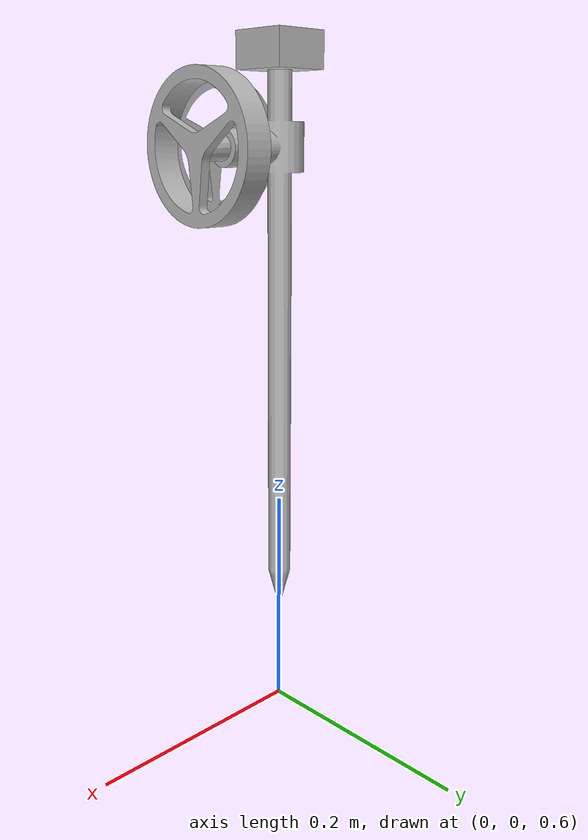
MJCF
<mujoco model="momentum_pendulum">
  <option timestep="0.005" wind="0.1 0.1 0">
    <flag energy="enable"/>
  </option>
    <size njmax="50" nconmax="10" nstack="200"/>
    <visual>
      <rgba haze=".3 .3 .3 1"/>
      <global offwidth="2560" offheight="1440" elevation="-20" azimuth="120"/>
    </visual>

  <asset>
    <mesh name="base_link" file="base_link.stl" scale="0.001 0.001 0.001"/>
    <mesh name="axis_1_1" file="axis_1_1.stl" scale="0.001 0.001 0.001"/>
    <mesh name="axis_2_1" file="axis_2_1.stl" scale="0.001 0.001 0.001"/>
    <texture type="skybox" builtin="gradient" rgb1="0.4 0.6 0.8" rgb2="0 0 0" width="32" height="512"/>
    <texture name="grid" type="2d" builtin="checker" rgb1="0.2 0.3 0.4" rgb2="0.1 0.2 0.3" width="512" height="512"/>
    <material name="grid" texture="grid" texrepeat="1 1" texuniform="true" reflectance="0.2"/>
  </asset>
  <worldbody>
    <geom name="floor" size="0 0 0.01" type="plane" material="grid" condim="1"/>
    <light name="floorlight" mode="fixed" pos="0 0 50" dir="0 0 -1" diffuse="0.8 0.8 0.8" specular="0.3 0.3 0.3"/>
    <body name="rod" pos="0 0 0.7" euler="90 0 0">
      <geom type="mesh" rgba="0.7 0.7 0.7 1" mesh="base_link"/>
      <joint name="rod_body" type="free"/>
        <body name="axis_1_1" pos="0 0.41 0.082" gravcomp="0">
          <inertial pos="0 0 -0.00236136" quat="0.5 0.5 -0.5 0.5" mass="0.253015" diaginertia="0.000683 0.000353 0.000353"/>
          <joint name="axis_1" pos="0 0 0" axis="0 0 1"/>
          <geom pos="0 -0.41 -0.082" type="mesh" rgba="0.7 0.7 0.7 1" mesh="axis_1_1"/>
        </body>
        <body name="axis_2_1" pos="0.082 0.41 0" gravcomp="0">
          <inertial pos="-0.00236136 0 0" mass="0.253015" diaginertia="0.000683 0.000353 0.000353"/>
          <joint name="axis_2" pos="0 0 0" axis="1 0 0"/>
          <geom pos="-0.082 -0.41 0" type="mesh" rgba="0.7 0.7 0.7 1" mesh="axis_2_1"/>
        </body>
    </body>
  </worldbody>
  <actuator>
    <motor gear="1" joint="axis_1"/>
    <motor gear="1" joint="axis_2"/>
  </actuator>
  <keyframe>
    <key name="start" qpos="0. 0. 0. 0.70710678 0.70710678 0.
    0. 0. 0."/>
  </keyframe>
</mujoco>
